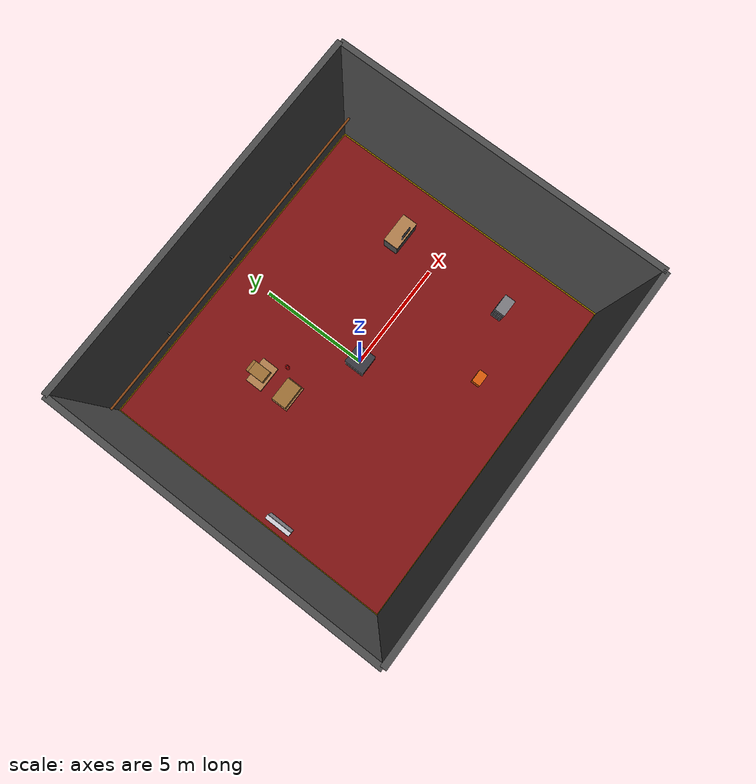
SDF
<?xml version="1.0" ?>
<sdf version="1.6">
  <world name="factory">

    <physics type="ode">
      <real_time_update_rate>1000.0</real_time_update_rate>
      <max_step_size>0.001</max_step_size>
      <real_time_factor>1</real_time_factor>
      <ode>
        <solver>
          <type>quick</type>
          <iters>200</iters>
          <sor>1.3</sor>
          <use_dynamic_moi_rescaling>true</use_dynamic_moi_rescaling>
        </solver>
        <constraints>
          <erp>0.2</erp>
          <cfm>1e-5</cfm>
          <contact_max_correcting_vel>100</contact_max_correcting_vel>
          <contact_surface_layer>0.001</contact_surface_layer>
        </constraints>
      </ode>
    </physics>

    <scene>
      <ambient>0.35 0.35 0.35 1</ambient>
      <background>0.10 0.10 0.10 1</background>
      <shadows>false</shadows>
    </scene>

    <!-- Directional fill -->
    <light name="sun" type="directional">
      <cast_shadows>false</cast_shadows>
      <pose>0 0 10 0 0 0</pose>
      <diffuse>0.55 0.55 0.55 1</diffuse>
      <specular>0.05 0.05 0.05 1</specular>
      <direction>-0.3 0.2 -0.9</direction>
    </light>

    <!-- Overhead point lights (no fixtures - no ceiling) -->
    <light name="lamp_1" type="point">
      <pose>-4 -4 6.0 0 0 0</pose>
      <diffuse>1 0.97 0.90 1</diffuse>
      <specular>0.1 0.1 0.1 1</specular>
      <attenuation><range>14</range><constant>0.15</constant><linear>0.02</linear><quadratic>0.002</quadratic></attenuation>
      <cast_shadows>false</cast_shadows>
    </light>
    <light name="lamp_2" type="point">
      <pose>4 -4 6.0 0 0 0</pose>
      <diffuse>1 0.97 0.90 1</diffuse>
      <specular>0.1 0.1 0.1 1</specular>
      <attenuation><range>14</range><constant>0.15</constant><linear>0.02</linear><quadratic>0.002</quadratic></attenuation>
      <cast_shadows>false</cast_shadows>
    </light>
    <light name="lamp_3" type="point">
      <pose>-4 4 6.0 0 0 0</pose>
      <diffuse>1 0.97 0.90 1</diffuse>
      <specular>0.1 0.1 0.1 1</specular>
      <attenuation><range>14</range><constant>0.15</constant><linear>0.02</linear><quadratic>0.002</quadratic></attenuation>
      <cast_shadows>false</cast_shadows>
    </light>
    <light name="lamp_4" type="point">
      <pose>4 4 6.0 0 0 0</pose>
      <diffuse>1 0.97 0.90 1</diffuse>
      <specular>0.1 0.1 0.1 1</specular>
      <attenuation><range>14</range><constant>0.15</constant><linear>0.02</linear><quadratic>0.002</quadratic></attenuation>
      <cast_shadows>false</cast_shadows>
    </light>
    <light name="lamp_work" type="point">
      <pose>0 0 5.5 0 0 0</pose>
      <diffuse>1 0.98 0.92 1</diffuse>
      <specular>0.15 0.15 0.15 1</specular>
      <attenuation><range>8</range><constant>0.2</constant><linear>0.03</linear><quadratic>0.003</quadratic></attenuation>
      <cast_shadows>false</cast_shadows>
    </light>

    <!-- ===== RED PAINTED CONCRETE FLOOR ===== -->
    <model name="floor">
      <static>true</static>
      <pose>0 0 -0.05 0 0 0</pose>
      <link name="link">
        <collision name="col"><geometry><box><size>16 14 0.1</size></box></geometry></collision>
        <visual name="vis">
          <geometry><box><size>16 14 0.1</size></box></geometry>
          <material>
            <ambient>0.35 0.05 0.05 1</ambient>
            <diffuse>0.50 0.07 0.07 1</diffuse>
            <specular>0.08 0.02 0.02 1</specular>
          </material>
        </visual>
      </link>
    </model>

    <!-- ===== WALLS — dark grey concrete ===== -->
    <model name="wall_north">
      <static>true</static>
      <pose>0 7 3.5 0 0 0</pose>
      <link name="link">
        <collision name="col"><geometry><box><size>16 0.25 7</size></box></geometry></collision>
        <visual name="vis">
          <geometry><box><size>16 0.25 7</size></box></geometry>
          <material>
            <script>
              <uri>file://media/materials/scripts/gazebo.material</uri>
              <uri>file://media/materials/textures/</uri>
              <name>Gazebo/DarkGrey</name>
            </script>
          </material>
        </visual>
      </link>
    </model>
    <model name="wall_south">
      <static>true</static>
      <pose>0 -7 3.5 0 0 0</pose>
      <link name="link">
        <collision name="col"><geometry><box><size>16 0.25 7</size></box></geometry></collision>
        <visual name="vis">
          <geometry><box><size>16 0.25 7</size></box></geometry>
          <material>
            <script>
              <uri>file://media/materials/scripts/gazebo.material</uri>
              <uri>file://media/materials/textures/</uri>
              <name>Gazebo/DarkGrey</name>
            </script>
          </material>
        </visual>
      </link>
    </model>
    <model name="wall_east">
      <static>true</static>
      <pose>8 0 3.5 0 0 0</pose>
      <link name="link">
        <collision name="col"><geometry><box><size>0.25 14 7</size></box></geometry></collision>
        <visual name="vis">
          <geometry><box><size>0.25 14 7</size></box></geometry>
          <material>
            <script>
              <uri>file://media/materials/scripts/gazebo.material</uri>
              <uri>file://media/materials/textures/</uri>
              <name>Gazebo/DarkGrey</name>
            </script>
          </material>
        </visual>
      </link>
    </model>
    <model name="wall_west">
      <static>true</static>
      <pose>-8 0 3.5 0 0 0</pose>
      <link name="link">
        <collision name="col"><geometry><box><size>0.25 14 7</size></box></geometry></collision>
        <visual name="vis">
          <geometry><box><size>0.25 14 7</size></box></geometry>
          <material>
            <script>
              <uri>file://media/materials/scripts/gazebo.material</uri>
              <uri>file://media/materials/textures/</uri>
              <name>Gazebo/DarkGrey</name>
            </script>
          </material>
        </visual>
      </link>
    </model>

    <!-- ===== INDUSTRIAL PIPE along north wall (copper/brown) ===== -->
    <model name="pipe_main">
      <static>true</static>
      <pose>0 6.5 2.2 0 1.5708 0</pose>
      <link name="link">
        <collision name="col"><geometry><cylinder><radius>0.05</radius><length>15.5</length></cylinder></geometry></collision>
        <visual name="vis">
          <geometry><cylinder><radius>0.05</radius><length>15.5</length></cylinder></geometry>
          <material>
            <ambient>0.35 0.18 0.05 1</ambient>
            <diffuse>0.55 0.28 0.08 1</diffuse>
            <specular>0.40 0.25 0.10 1</specular>
          </material>
        </visual>
      </link>
    </model>
    <!-- Pipe support brackets -->
    <model name="pipe_bracket_1">
      <static>true</static>
      <pose>-4 6.62 2.2 0 0 0</pose>
      <link name="link">
        <visual name="vis">
          <geometry><box><size>0.06 0.12 0.25</size></box></geometry>
          <material><ambient>0.18 0.18 0.18 1</ambient><diffuse>0.25 0.25 0.25 1</diffuse></material>
        </visual>
      </link>
    </model>
    <model name="pipe_bracket_2">
      <static>true</static>
      <pose>0 6.62 2.2 0 0 0</pose>
      <link name="link">
        <visual name="vis">
          <geometry><box><size>0.06 0.12 0.25</size></box></geometry>
          <material><ambient>0.18 0.18 0.18 1</ambient><diffuse>0.25 0.25 0.25 1</diffuse></material>
        </visual>
      </link>
    </model>
    <model name="pipe_bracket_3">
      <static>true</static>
      <pose>4 6.62 2.2 0 0 0</pose>
      <link name="link">
        <visual name="vis">
          <geometry><box><size>0.06 0.12 0.25</size></box></geometry>
          <material><ambient>0.18 0.18 0.18 1</ambient><diffuse>0.25 0.25 0.25 1</diffuse></material>
        </visual>
      </link>
    </model>

    <!-- ===== YELLOW SAFETY STRIPES at base of walls ===== -->
    <model name="stripe_north">
      <static>true</static>
      <pose>0 6.88 0.075 0 0 0</pose>
      <link name="link">
        <visual name="vis">
          <geometry><box><size>16 0.025 0.15</size></box></geometry>
          <material><ambient>1 0.80 0 1</ambient><diffuse>1 0.80 0 1</diffuse></material>
        </visual>
      </link>
    </model>
    <model name="stripe_south">
      <static>true</static>
      <pose>0 -6.88 0.075 0 0 0</pose>
      <link name="link">
        <visual name="vis">
          <geometry><box><size>16 0.025 0.15</size></box></geometry>
          <material><ambient>1 0.80 0 1</ambient><diffuse>1 0.80 0 1</diffuse></material>
        </visual>
      </link>
    </model>
    <model name="stripe_east">
      <static>true</static>
      <pose>7.88 0 0.075 0 0 0</pose>
      <link name="link">
        <visual name="vis">
          <geometry><box><size>0.025 14 0.15</size></box></geometry>
          <material><ambient>1 0.80 0 1</ambient><diffuse>1 0.80 0 1</diffuse></material>
        </visual>
      </link>
    </model>
    <model name="stripe_west">
      <static>true</static>
      <pose>-7.88 0 0.075 0 0 0</pose>
      <link name="link">
        <visual name="vis">
          <geometry><box><size>0.025 14 0.15</size></box></geometry>
          <material><ambient>1 0.80 0 1</ambient><diffuse>1 0.80 0 1</diffuse></material>
        </visual>
      </link>
    </model>

    <!-- ===== ROBOT PEDESTAL — black metal, top at z=0.85 ===== -->
    <model name="robot_pedestal">
      <static>true</static>
      <pose>0 0 0.425 0 0 0</pose>
      <link name="link">
        <collision name="col"><geometry><box><size>0.9 0.9 0.85</size></box></geometry></collision>
        <visual name="vis">
          <geometry><box><size>0.9 0.9 0.85</size></box></geometry>
          <material>
            <ambient>0.06 0.06 0.07 1</ambient>
            <diffuse>0.09 0.09 0.10 1</diffuse>
            <specular>0.35 0.35 0.35 1</specular>
          </material>
        </visual>
      </link>
    </model>
    <!-- Pedestal top plate (slightly lighter) -->
    <model name="robot_pedestal_top">
      <static>true</static>
      <pose>0 0 0.854 0 0 0</pose>
      <link name="link">
        <collision name="col"><geometry><box><size>0.92 0.92 0.008</size></box></geometry></collision>
        <visual name="vis">
          <geometry><box><size>0.92 0.92 0.008</size></box></geometry>
          <material>
            <ambient>0.18 0.18 0.20 1</ambient>
            <diffuse>0.22 0.22 0.25 1</diffuse>
            <specular>0.60 0.60 0.60 1</specular>
          </material>
        </visual>
      </link>
    </model>

    <!-- ===== WOOD PALLETS + CARDBOARD BOXES (left-center) ===== -->
    <!-- Pallet base -->
    <model name="pallet_1">
      <static>true</static>
      <pose>-3.0 3.0 0.075 0 0 0</pose>
      <link name="link">
        <collision name="col"><geometry><box><size>1.2 0.8 0.15</size></box></geometry></collision>
        <visual name="vis">
          <geometry><box><size>1.2 0.8 0.15</size></box></geometry>
          <material>
            <script>
              <uri>file://media/materials/scripts/gazebo.material</uri>
              <uri>file://media/materials/textures/</uri>
              <name>Gazebo/Wood</name>
            </script>
          </material>
        </visual>
      </link>
    </model>
    <!-- Box stack layer 1 -->
    <model name="box_l1a">
      <static>true</static>
      <pose>-3.0 3.0 0.37 0 0 0</pose>
      <link name="link">
        <collision name="col"><geometry><box><size>0.55 0.38 0.40</size></box></geometry></collision>
        <visual name="vis">
          <geometry><box><size>0.55 0.38 0.40</size></box></geometry>
          <material><ambient>0.55 0.38 0.20 1</ambient><diffuse>0.65 0.45 0.22 1</diffuse></material>
        </visual>
      </link>
    </model>
    <model name="box_l1b">
      <static>true</static>
      <pose>-3.0 3.42 0.37 0 0 0</pose>
      <link name="link">
        <collision name="col"><geometry><box><size>0.55 0.35 0.40</size></box></geometry></collision>
        <visual name="vis">
          <geometry><box><size>0.55 0.35 0.40</size></box></geometry>
          <material><ambient>0.50 0.34 0.18 1</ambient><diffuse>0.60 0.42 0.20 1</diffuse></material>
        </visual>
      </link>
    </model>
    <!-- Box stack layer 2 -->
    <model name="box_l2a">
      <static>true</static>
      <pose>-3.0 3.0 0.82 0 0 0</pose>
      <link name="link">
        <collision name="col"><geometry><box><size>0.55 0.75 0.38</size></box></geometry></collision>
        <visual name="vis">
          <geometry><box><size>0.55 0.75 0.38</size></box></geometry>
          <material><ambient>0.52 0.36 0.18 1</ambient><diffuse>0.62 0.44 0.21 1</diffuse></material>
        </visual>
      </link>
    </model>

    <!-- Second pallet -->
    <model name="pallet_2">
      <static>true</static>
      <pose>-3.0 1.6 0.075 0 0 0</pose>
      <link name="link">
        <collision name="col"><geometry><box><size>1.2 0.8 0.15</size></box></geometry></collision>
        <visual name="vis">
          <geometry><box><size>1.2 0.8 0.15</size></box></geometry>
          <material>
            <script>
              <uri>file://media/materials/scripts/gazebo.material</uri>
              <uri>file://media/materials/textures/</uri>
              <name>Gazebo/Wood</name>
            </script>
          </material>
        </visual>
      </link>
    </model>
    <model name="box_p2a">
      <static>true</static>
      <pose>-3.0 1.6 0.42 0 0 0</pose>
      <link name="link">
        <collision name="col"><geometry><box><size>1.1 0.70 0.45</size></box></geometry></collision>
        <visual name="vis">
          <geometry><box><size>1.1 0.70 0.45</size></box></geometry>
          <material><ambient>0.52 0.36 0.18 1</ambient><diffuse>0.62 0.44 0.21 1</diffuse></material>
        </visual>
      </link>
    </model>

    <!-- ===== FIRE EXTINGUISHER (red cylinder) ===== -->
    <model name="fire_extinguisher">
      <static>true</static>
      <pose>-2.1 2.3 0.30 0 0 0</pose>
      <link name="link">
        <collision name="col"><geometry><cylinder><radius>0.075</radius><length>0.60</length></cylinder></geometry></collision>
        <visual name="vis">
          <geometry><cylinder><radius>0.075</radius><length>0.60</length></cylinder></geometry>
          <material>
            <ambient>0.70 0.04 0.04 1</ambient>
            <diffuse>0.85 0.05 0.05 1</diffuse>
            <specular>0.40 0.10 0.10 1</specular>
          </material>
        </visual>
      </link>
    </model>
    <!-- Extinguisher nozzle (dark grey box on top) -->
    <model name="fire_extinguisher_top">
      <static>true</static>
      <pose>-2.1 2.3 0.63 0 0 0</pose>
      <link name="link">
        <visual name="vis">
          <geometry><box><size>0.06 0.06 0.08</size></box></geometry>
          <material><ambient>0.15 0.15 0.15 1</ambient><diffuse>0.20 0.20 0.20 1</diffuse></material>
        </visual>
      </link>
    </model>

    <!-- ===== RADIATOR / HVAC UNIT (left wall) ===== -->
    <model name="radiator_body">
      <static>true</static>
      <pose>-7.4 -1.5 0.55 0 0 0</pose>
      <link name="link">
        <collision name="col"><geometry><box><size>0.18 1.20 1.10</size></box></geometry></collision>
        <visual name="vis">
          <geometry><box><size>0.18 1.20 1.10</size></box></geometry>
          <material>
            <ambient>0.75 0.75 0.78 1</ambient>
            <diffuse>0.82 0.82 0.85 1</diffuse>
            <specular>0.25 0.25 0.25 1</specular>
          </material>
        </visual>
      </link>
    </model>
    <!-- Radiator fins (darker stripes) -->
    <model name="rad_fin_1">
      <static>true</static>
      <pose>-7.31 -1.5 0.55 0 0 0</pose>
      <link name="link">
        <visual name="vis">
          <geometry><box><size>0.02 1.18 1.08</size></box></geometry>
          <material><ambient>0.55 0.55 0.58 1</ambient><diffuse>0.60 0.60 0.62 1</diffuse></material>
        </visual>
      </link>
    </model>

    <!-- ===== WORKDESK + MONITOR (right side) ===== -->
    <model name="desk_body">
      <static>true</static>
      <pose>5.5 2.0 0.38 0 0 0</pose>
      <link name="link">
        <collision name="col"><geometry><box><size>1.4 0.7 0.76</size></box></geometry></collision>
        <visual name="vis">
          <geometry><box><size>1.4 0.7 0.76</size></box></geometry>
          <material>
            <script>
              <uri>file://media/materials/scripts/gazebo.material</uri>
              <uri>file://media/materials/textures/</uri>
              <name>Gazebo/DarkGrey</name>
            </script>
          </material>
        </visual>
      </link>
    </model>
    <model name="desk_top">
      <static>true</static>
      <pose>5.5 2.0 0.77 0 0 0</pose>
      <link name="link">
        <collision name="col"><geometry><box><size>1.42 0.72 0.04</size></box></geometry></collision>
        <visual name="vis">
          <geometry><box><size>1.42 0.72 0.04</size></box></geometry>
          <material>
            <script>
              <uri>file://media/materials/scripts/gazebo.material</uri>
              <uri>file://media/materials/textures/</uri>
              <name>Gazebo/Wood</name>
            </script>
          </material>
        </visual>
      </link>
    </model>
    <!-- Monitor stand -->
    <model name="monitor_stand">
      <static>true</static>
      <pose>5.5 1.75 0.87 0 0 0</pose>
      <link name="link">
        <visual name="vis">
          <geometry><box><size>0.08 0.08 0.18</size></box></geometry>
          <material><ambient>0.12 0.12 0.12 1</ambient><diffuse>0.15 0.15 0.15 1</diffuse></material>
        </visual>
      </link>
    </model>
    <!-- Monitor screen -->
    <model name="monitor_screen">
      <static>true</static>
      <pose>5.5 1.72 1.06 0 0 0</pose>
      <link name="link">
        <visual name="vis">
          <geometry><box><size>0.55 0.04 0.35</size></box></geometry>
          <material><ambient>0.08 0.08 0.10 1</ambient><diffuse>0.10 0.10 0.12 1</diffuse><specular>0.50 0.50 0.50 1</specular></material>
        </visual>
      </link>
    </model>

    <!-- ===== STACK OF GREY TRAYS / BINS (right-back) ===== -->
    <model name="bin_stack_1">
      <static>true</static>
      <pose>5.5 -3.5 0.10 0 0 0</pose>
      <link name="link">
        <collision name="col"><geometry><box><size>0.8 0.5 0.20</size></box></geometry></collision>
        <visual name="vis">
          <geometry><box><size>0.8 0.5 0.20</size></box></geometry>
          <material><ambient>0.40 0.40 0.42 1</ambient><diffuse>0.48 0.48 0.50 1</diffuse></material>
        </visual>
      </link>
    </model>
    <model name="bin_stack_2">
      <static>true</static>
      <pose>5.5 -3.5 0.32 0 0 0</pose>
      <link name="link">
        <collision name="col"><geometry><box><size>0.8 0.5 0.20</size></box></geometry></collision>
        <visual name="vis">
          <geometry><box><size>0.8 0.5 0.20</size></box></geometry>
          <material><ambient>0.35 0.35 0.38 1</ambient><diffuse>0.42 0.42 0.45 1</diffuse></material>
        </visual>
      </link>
    </model>
    <model name="bin_stack_3">
      <static>true</static>
      <pose>5.5 -3.5 0.54 0 0 0</pose>
      <link name="link">
        <collision name="col"><geometry><box><size>0.8 0.5 0.20</size></box></geometry></collision>
        <visual name="vis">
          <geometry><box><size>0.8 0.5 0.20</size></box></geometry>
          <material><ambient>0.40 0.40 0.42 1</ambient><diffuse>0.48 0.48 0.50 1</diffuse></material>
        </visual>
      </link>
    </model>
    <model name="bin_stack_4">
      <static>true</static>
      <pose>5.5 -3.5 0.76 0 0 0</pose>
      <link name="link">
        <collision name="col"><geometry><box><size>0.8 0.5 0.20</size></box></geometry></collision>
        <visual name="vis">
          <geometry><box><size>0.8 0.5 0.20</size></box></geometry>
          <material><ambient>0.35 0.35 0.38 1</ambient><diffuse>0.42 0.42 0.45 1</diffuse></material>
        </visual>
      </link>
    </model>
    <model name="bin_stack_5">
      <static>true</static>
      <pose>5.5 -3.5 0.98 0 0 0</pose>
      <link name="link">
        <collision name="col"><geometry><box><size>0.8 0.5 0.20</size></box></geometry></collision>
        <visual name="vis">
          <geometry><box><size>0.8 0.5 0.20</size></box></geometry>
          <material><ambient>0.40 0.40 0.42 1</ambient><diffuse>0.48 0.48 0.50 1</diffuse></material>
        </visual>
      </link>
    </model>

    <!-- ===== ORANGE PLASTIC CRATE (foreground) ===== -->
    <model name="orange_crate">
      <static>true</static>
      <pose>2.5 -4.5 0.18 0 0 0</pose>
      <link name="link">
        <collision name="col"><geometry><box><size>0.60 0.40 0.35</size></box></geometry></collision>
        <visual name="vis">
          <geometry><box><size>0.60 0.40 0.35</size></box></geometry>
          <material>
            <ambient>0.70 0.28 0.02 1</ambient>
            <diffuse>0.85 0.35 0.03 1</diffuse>
            <specular>0.15 0.08 0.02 1</specular>
          </material>
        </visual>
      </link>
    </model>

  </world>
</sdf>
